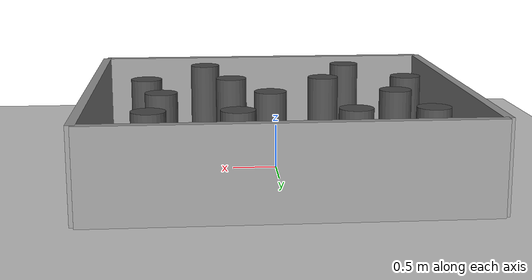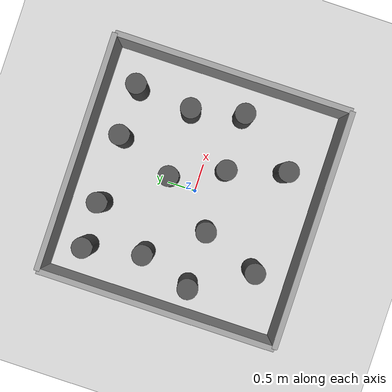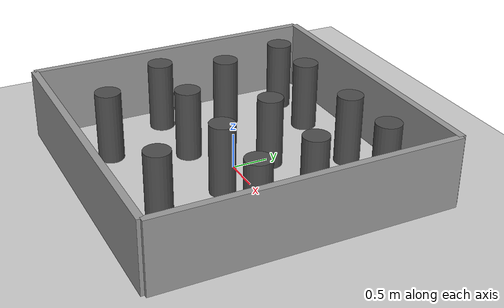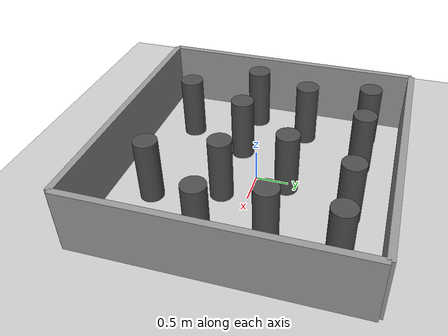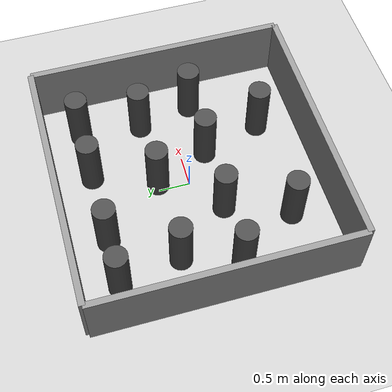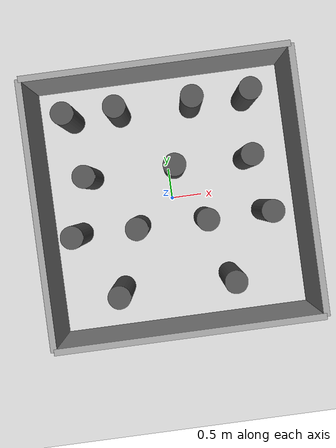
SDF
<?xml version="1.0" ?>
<sdf version="1.6">
  <world name="very_dense">

    <physics type="ode">
      <real_time_update_rate>0.0</real_time_update_rate>
      <max_step_size>0.001</max_step_size>
      <real_time_factor>1.0</real_time_factor>
      <ode>
        <solver>
          <type>quick</type>
          <iters>150</iters>
          <precon_iters>0</precon_iters>
          <sor>1.400000</sor>
        </solver>
        <constraints>
          <cfm>0.00001</cfm>
          <erp>0.2</erp>
          <contact_max_correcting_vel>2000.000000</contact_max_correcting_vel>
          <contact_surface_layer>0.01000</contact_surface_layer>
        </constraints>
      </ode>
    </physics>

    <include><uri>model://sun</uri></include>
    <include><uri>model://ground_plane</uri></include>

    <!-- Bounding walls (4m x 4m arena) -->
    <model name="wall_north">
      <static>true</static><pose>0 2.1 0.5 0 0 0</pose>
      <link name="link">
        <collision name="col"><geometry><box><size>4.2 0.1 1.0</size></box></geometry></collision>
        <visual name="vis"><geometry><box><size>4.2 0.1 1.0</size></box></geometry>
          <material><script><name>Gazebo/Grey</name></script></material></visual>
      </link>
    </model>
    <model name="wall_south">
      <static>true</static><pose>0 -2.1 0.5 0 0 0</pose>
      <link name="link">
        <collision name="col"><geometry><box><size>4.2 0.1 1.0</size></box></geometry></collision>
        <visual name="vis"><geometry><box><size>4.2 0.1 1.0</size></box></geometry>
          <material><script><name>Gazebo/Grey</name></script></material></visual>
      </link>
    </model>
    <model name="wall_east">
      <static>true</static><pose>2.1 0 0.5 0 0 1.5708</pose>
      <link name="link">
        <collision name="col"><geometry><box><size>4.2 0.1 1.0</size></box></geometry></collision>
        <visual name="vis"><geometry><box><size>4.2 0.1 1.0</size></box></geometry>
          <material><script><name>Gazebo/Grey</name></script></material></visual>
      </link>
    </model>
    <model name="wall_west">
      <static>true</static><pose>-2.1 0 0.5 0 0 1.5708</pose>
      <link name="link">
        <collision name="col"><geometry><box><size>4.2 0.1 1.0</size></box></geometry></collision>
        <visual name="vis"><geometry><box><size>4.2 0.1 1.0</size></box></geometry>
          <material><script><name>Gazebo/Grey</name></script></material></visual>
      </link>
    </model>

    <!-- Fileira 1 — y=+1.5 (4 cilindros, corredor forçado centro-direita) -->
    <model name="obs_0">
      <static>true</static><pose>-1.5 1.5 0.5 0 0 0</pose>
      <link name="link">
        <collision name="col"><geometry><cylinder><radius>0.18</radius><length>1.0</length></cylinder></geometry></collision>
        <visual name="vis"><geometry><cylinder><radius>0.18</radius><length>1.0</length></cylinder></geometry>
          <material><script><name>Gazebo/DarkGrey</name></script></material></visual>
      </link>
    </model>
    <model name="obs_1">
      <static>true</static><pose>-0.7 1.5 0.5 0 0 0</pose>
      <link name="link">
        <collision name="col"><geometry><cylinder><radius>0.18</radius><length>1.0</length></cylinder></geometry></collision>
        <visual name="vis"><geometry><cylinder><radius>0.18</radius><length>1.0</length></cylinder></geometry>
          <material><script><name>Gazebo/DarkGrey</name></script></material></visual>
      </link>
    </model>
    <!-- gap ~0.6m entre obs_1 e obs_2 → corredor estreito para o robô -->
    <model name="obs_2">
      <static>true</static><pose>0.5 1.5 0.5 0 0 0</pose>
      <link name="link">
        <collision name="col"><geometry><cylinder><radius>0.18</radius><length>1.0</length></cylinder></geometry></collision>
        <visual name="vis"><geometry><cylinder><radius>0.18</radius><length>1.0</length></cylinder></geometry>
          <material><script><name>Gazebo/DarkGrey</name></script></material></visual>
      </link>
    </model>
    <model name="obs_3">
      <static>true</static><pose>1.4 1.5 0.5 0 0 0</pose>
      <link name="link">
        <collision name="col"><geometry><cylinder><radius>0.18</radius><length>1.0</length></cylinder></geometry></collision>
        <visual name="vis"><geometry><cylinder><radius>0.18</radius><length>1.0</length></cylinder></geometry>
          <material><script><name>Gazebo/DarkGrey</name></script></material></visual>
      </link>
    </model>

    <!-- Fileira 2 — y=+0.5 (3 cilindros laterais, espaço central livre) -->
    <model name="obs_4">
      <static>true</static><pose>-1.3 0.5 0.5 0 0 0</pose>
      <link name="link">
        <collision name="col"><geometry><cylinder><radius>0.18</radius><length>1.0</length></cylinder></geometry></collision>
        <visual name="vis"><geometry><cylinder><radius>0.18</radius><length>1.0</length></cylinder></geometry>
          <material><script><name>Gazebo/DarkGrey</name></script></material></visual>
      </link>
    </model>
    <model name="obs_5">
      <static>true</static><pose>0.1 0.5 0.5 0 0 0</pose>
      <link name="link">
        <collision name="col"><geometry><cylinder><radius>0.18</radius><length>1.0</length></cylinder></geometry></collision>
        <visual name="vis"><geometry><cylinder><radius>0.18</radius><length>1.0</length></cylinder></geometry>
          <material><script><name>Gazebo/DarkGrey</name></script></material></visual>
      </link>
    </model>
    <model name="obs_6">
      <static>true</static><pose>1.3 0.5 0.5 0 0 0</pose>
      <link name="link">
        <collision name="col"><geometry><cylinder><radius>0.18</radius><length>1.0</length></cylinder></geometry></collision>
        <visual name="vis"><geometry><cylinder><radius>0.18</radius><length>1.0</length></cylinder></geometry>
          <material><script><name>Gazebo/DarkGrey</name></script></material></visual>
      </link>
    </model>

    <!-- Fileira 3 — y=-0.4 (4 cilindros, zona de máxima densidade) -->
    <model name="obs_7">
      <static>true</static><pose>-1.6 -0.4 0.5 0 0 0</pose>
      <link name="link">
        <collision name="col"><geometry><cylinder><radius>0.18</radius><length>1.0</length></cylinder></geometry></collision>
        <visual name="vis"><geometry><cylinder><radius>0.18</radius><length>1.0</length></cylinder></geometry>
          <material><script><name>Gazebo/DarkGrey</name></script></material></visual>
      </link>
    </model>
    <model name="obs_8">
      <static>true</static><pose>-0.6 -0.4 0.5 0 0 0</pose>
      <link name="link">
        <collision name="col"><geometry><cylinder><radius>0.18</radius><length>1.0</length></cylinder></geometry></collision>
        <visual name="vis"><geometry><cylinder><radius>0.18</radius><length>1.0</length></cylinder></geometry>
          <material><script><name>Gazebo/DarkGrey</name></script></material></visual>
      </link>
    </model>
    <model name="obs_9">
      <static>true</static><pose>0.5 -0.4 0.5 0 0 0</pose>
      <link name="link">
        <collision name="col"><geometry><cylinder><radius>0.18</radius><length>1.0</length></cylinder></geometry></collision>
        <visual name="vis"><geometry><cylinder><radius>0.18</radius><length>1.0</length></cylinder></geometry>
          <material><script><name>Gazebo/DarkGrey</name></script></material></visual>
      </link>
    </model>
    <model name="obs_10">
      <static>true</static><pose>1.5 -0.4 0.5 0 0 0</pose>
      <link name="link">
        <collision name="col"><geometry><cylinder><radius>0.18</radius><length>1.0</length></cylinder></geometry></collision>
        <visual name="vis"><geometry><cylinder><radius>0.18</radius><length>1.0</length></cylinder></geometry>
          <material><script><name>Gazebo/DarkGrey</name></script></material></visual>
      </link>
    </model>

    <!-- Fileira 4 — y=-1.4 (2 cilindros, corredor estreito para a saída) -->
    <model name="obs_11">
      <static>true</static><pose>-1.0 -1.4 0.5 0 0 0</pose>
      <link name="link">
        <collision name="col"><geometry><cylinder><radius>0.18</radius><length>1.0</length></cylinder></geometry></collision>
        <visual name="vis"><geometry><cylinder><radius>0.18</radius><length>1.0</length></cylinder></geometry>
          <material><script><name>Gazebo/DarkGrey</name></script></material></visual>
      </link>
    </model>
    <model name="obs_12">
      <static>true</static><pose>0.8 -1.4 0.5 0 0 0</pose>
      <link name="link">
        <collision name="col"><geometry><cylinder><radius>0.18</radius><length>1.0</length></cylinder></geometry></collision>
        <visual name="vis"><geometry><cylinder><radius>0.18</radius><length>1.0</length></cylinder></geometry>
          <material><script><name>Gazebo/DarkGrey</name></script></material></visual>
      </link>
    </model>

    <gui fullscreen="0">
      <camera name="user_camera">
        <pose>0 0 8 0 1.5708 0</pose>
        <view_controller>orbit</view_controller>
      </camera>
    </gui>

  </world>
</sdf>
